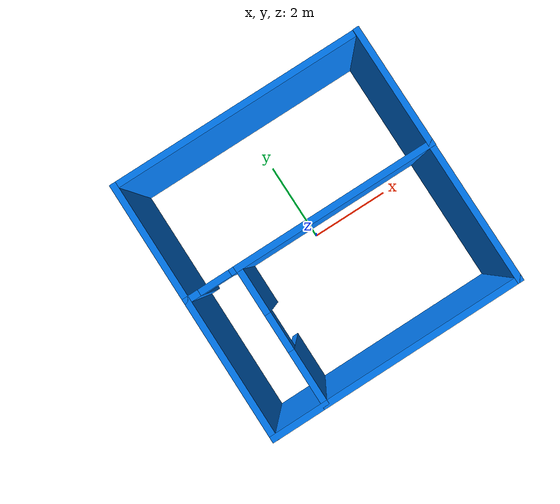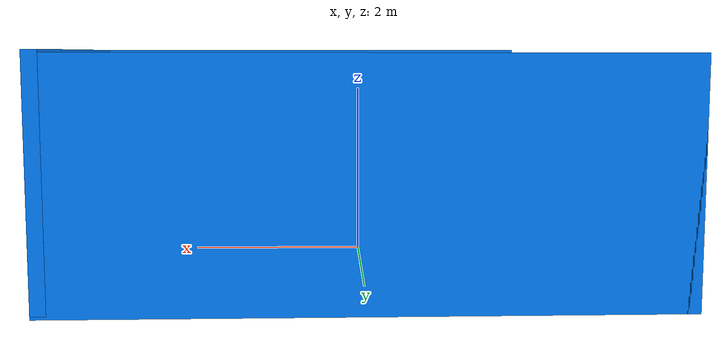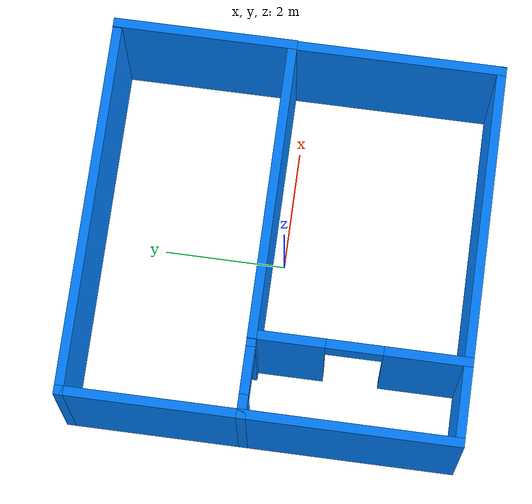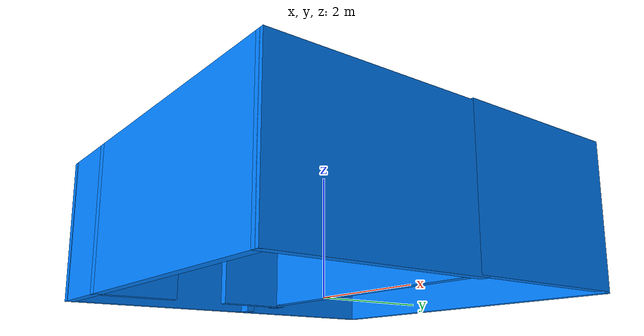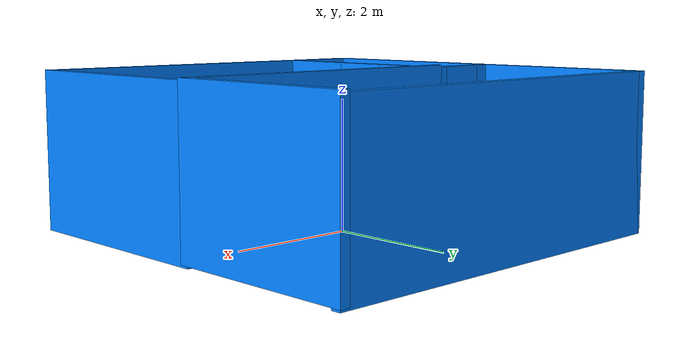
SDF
<?xml version='1.0'?>
<sdf version='1.6'>
  <model name='BuildingFloorPlan'>
    <link name='Wall_1'>
      <pose frame=''>0 3.10989 0 0 -0 0</pose>
      <self_collide>0</self_collide>
      <kinematic>0</kinematic>
      <gravity>1</gravity>
      <inertial>
        <mass>1</mass>
        <pose frame=''>0 0 0 0 -0 0</pose>
        <inertia>
          <ixx>1</ixx>
          <ixy>0</ixy>
          <ixz>0</ixz>
          <iyy>1</iyy>
          <iyz>0</iyz>
          <izz>1</izz>
        </inertia>
      </inertial>
      <visual name='Wall_1_Visual'>
        <pose frame=''>0 0 1.22 0 -0 0</pose>
        <geometry>
          <box>
            <size>6.23 0.15 2.44</size>
          </box>
        </geometry>
        <material>
          <script>
            <uri>file://media/materials/scripts/gazebo.material</uri>
            <name>Gazebo/Grey</name>
          </script>
          <ambient>0 0.5 1 1</ambient>
          <diffuse>0.7 0.7 0.7 1</diffuse>
          <specular>0.01 0.01 0.01 1</specular>
          <emissive>0 0 0 1</emissive>
          <shader type='vertex'>
            <normal_map>__default__</normal_map>
          </shader>
        </material>
        <meta>
          <layer>0</layer>
        </meta>
        <transparency>0</transparency>
        <cast_shadows>1</cast_shadows>
      </visual>
      <collision name='Wall_1_Collision'>
        <laser_retro>0</laser_retro>
        <max_contacts>10</max_contacts>
        <pose frame=''>0 0 1.22 0 -0 0</pose>
        <geometry>
          <box>
            <size>6.23 0.15 2.44</size>
          </box>
        </geometry>
        <surface>
          <friction>
            <ode>
              <mu>1</mu>
              <mu2>1</mu2>
              <fdir1>0 0 0</fdir1>
              <slip1>0</slip1>
              <slip2>0</slip2>
            </ode>
            <torsional>
              <coefficient>1</coefficient>
              <patch_radius>0</patch_radius>
              <surface_radius>0</surface_radius>
              <use_patch_radius>1</use_patch_radius>
              <ode>
                <slip>0</slip>
              </ode>
            </torsional>
          </friction>
          <bounce>
            <restitution_coefficient>0</restitution_coefficient>
            <threshold>1e+06</threshold>
          </bounce>
          <contact>
            <collide_without_contact>0</collide_without_contact>
            <collide_without_contact_bitmask>1</collide_without_contact_bitmask>
            <collide_bitmask>1</collide_bitmask>
            <ode>
              <soft_cfm>0</soft_cfm>
              <soft_erp>0.2</soft_erp>
              <kp>1e+13</kp>
              <kd>1</kd>
              <max_vel>0.01</max_vel>
              <min_depth>0</min_depth>
            </ode>
            <bullet>
              <split_impulse>1</split_impulse>
              <split_impulse_penetration_threshold>-0.01</split_impulse_penetration_threshold>
              <soft_cfm>0</soft_cfm>
              <soft_erp>0.2</soft_erp>
              <kp>1e+13</kp>
              <kd>1</kd>
            </bullet>
          </contact>
        </surface>
      </collision>
    </link>
    <link name='Wall_10'>
      <pose frame=''>0.635 -3.11011 0 0 -0 0</pose>
      <self_collide>0</self_collide>
      <kinematic>0</kinematic>
      <gravity>1</gravity>
      <inertial>
        <mass>1</mass>
        <pose frame=''>0 0 0 0 -0 0</pose>
        <inertia>
          <ixx>1</ixx>
          <ixy>0</ixy>
          <ixz>0</ixz>
          <iyy>1</iyy>
          <iyz>0</iyz>
          <izz>1</izz>
        </inertia>
      </inertial>
      <visual name='Wall_10_Visual'>
        <pose frame=''>0 0 1.22 0 -0 0</pose>
        <geometry>
          <box>
            <size>4.95989 0.15 2.44</size>
          </box>
        </geometry>
        <material>
          <script>
            <uri>file://media/materials/scripts/gazebo.material</uri>
            <name>Gazebo/Grey</name>
          </script>
          <ambient>0 0.5 1 1</ambient>
          <diffuse>0.7 0.7 0.7 1</diffuse>
          <specular>0.01 0.01 0.01 1</specular>
          <emissive>0 0 0 1</emissive>
          <shader type='vertex'>
            <normal_map>__default__</normal_map>
          </shader>
        </material>
        <meta>
          <layer>0</layer>
        </meta>
        <transparency>0</transparency>
        <cast_shadows>1</cast_shadows>
      </visual>
      <collision name='Wall_10_Collision'>
        <laser_retro>0</laser_retro>
        <max_contacts>10</max_contacts>
        <pose frame=''>0 0 1.22 0 -0 0</pose>
        <geometry>
          <box>
            <size>4.95989 0.15 2.44</size>
          </box>
        </geometry>
        <surface>
          <friction>
            <ode>
              <mu>1</mu>
              <mu2>1</mu2>
              <fdir1>0 0 0</fdir1>
              <slip1>0</slip1>
              <slip2>0</slip2>
            </ode>
            <torsional>
              <coefficient>1</coefficient>
              <patch_radius>0</patch_radius>
              <surface_radius>0</surface_radius>
              <use_patch_radius>1</use_patch_radius>
              <ode>
                <slip>0</slip>
              </ode>
            </torsional>
          </friction>
          <bounce>
            <restitution_coefficient>0</restitution_coefficient>
            <threshold>1e+06</threshold>
          </bounce>
          <contact>
            <collide_without_contact>0</collide_without_contact>
            <collide_without_contact_bitmask>1</collide_without_contact_bitmask>
            <collide_bitmask>1</collide_bitmask>
            <ode>
              <soft_cfm>0</soft_cfm>
              <soft_erp>0.2</soft_erp>
              <kp>1e+13</kp>
              <kd>1</kd>
              <max_vel>0.01</max_vel>
              <min_depth>0</min_depth>
            </ode>
            <bullet>
              <split_impulse>1</split_impulse>
              <split_impulse_penetration_threshold>-0.01</split_impulse_penetration_threshold>
              <soft_cfm>0</soft_cfm>
              <soft_erp>0.2</soft_erp>
              <kp>1e+13</kp>
              <kd>1</kd>
            </bullet>
          </contact>
        </surface>
      </collision>
    </link>
    <link name='Wall_12'>
      <pose frame=''>3.04 -1.42011 0 0 -0 1.5708</pose>
      <self_collide>0</self_collide>
      <kinematic>0</kinematic>
      <gravity>1</gravity>
      <inertial>
        <mass>1</mass>
        <pose frame=''>0 0 0 0 -0 0</pose>
        <inertia>
          <ixx>1</ixx>
          <ixy>0</ixy>
          <ixz>0</ixz>
          <iyy>1</iyy>
          <iyz>0</iyz>
          <izz>1</izz>
        </inertia>
      </inertial>
      <visual name='Wall_12_Visual'>
        <pose frame=''>0 0 1.22 0 -0 0</pose>
        <geometry>
          <box>
            <size>3.53 0.15 2.44</size>
          </box>
        </geometry>
        <material>
          <script>
            <uri>file://media/materials/scripts/gazebo.material</uri>
            <name>Gazebo/Grey</name>
          </script>
          <ambient>0 0.5 1 1</ambient>
          <diffuse>0.7 0.7 0.7 1</diffuse>
          <specular>0.01 0.01 0.01 1</specular>
          <emissive>0 0 0 1</emissive>
          <shader type='vertex'>
            <normal_map>__default__</normal_map>
          </shader>
        </material>
        <meta>
          <layer>0</layer>
        </meta>
        <transparency>0</transparency>
        <cast_shadows>1</cast_shadows>
      </visual>
      <collision name='Wall_12_Collision'>
        <laser_retro>0</laser_retro>
        <max_contacts>10</max_contacts>
        <pose frame=''>0 0 1.22 0 -0 0</pose>
        <geometry>
          <box>
            <size>3.53 0.15 2.44</size>
          </box>
        </geometry>
        <surface>
          <friction>
            <ode>
              <mu>1</mu>
              <mu2>1</mu2>
              <fdir1>0 0 0</fdir1>
              <slip1>0</slip1>
              <slip2>0</slip2>
            </ode>
            <torsional>
              <coefficient>1</coefficient>
              <patch_radius>0</patch_radius>
              <surface_radius>0</surface_radius>
              <use_patch_radius>1</use_patch_radius>
              <ode>
                <slip>0</slip>
              </ode>
            </torsional>
          </friction>
          <bounce>
            <restitution_coefficient>0</restitution_coefficient>
            <threshold>1e+06</threshold>
          </bounce>
          <contact>
            <collide_without_contact>0</collide_without_contact>
            <collide_without_contact_bitmask>1</collide_without_contact_bitmask>
            <collide_bitmask>1</collide_bitmask>
            <ode>
              <soft_cfm>0</soft_cfm>
              <soft_erp>0.2</soft_erp>
              <kp>1e+13</kp>
              <kd>1</kd>
              <max_vel>0.01</max_vel>
              <min_depth>0</min_depth>
            </ode>
            <bullet>
              <split_impulse>1</split_impulse>
              <split_impulse_penetration_threshold>-0.01</split_impulse_penetration_threshold>
              <soft_cfm>0</soft_cfm>
              <soft_erp>0.2</soft_erp>
              <kp>1e+13</kp>
              <kd>1</kd>
            </bullet>
          </contact>
        </surface>
      </collision>
    </link>
    <link name='Wall_14'>
      <pose frame=''>0.635 0.26989 0 0 -0 0</pose>
      <inertial>
        <mass>1</mass>
        <pose frame=''>0 0 0 0 -0 0</pose>
        <inertia>
          <ixx>1</ixx>
          <ixy>0</ixy>
          <ixz>0</ixz>
          <iyy>1</iyy>
          <iyz>0</iyz>
          <izz>1</izz>
        </inertia>
      </inertial>
      <self_collide>0</self_collide>
      <kinematic>0</kinematic>
      <gravity>1</gravity>
      <visual name='Wall_14_Visual'>
        <pose frame=''>0 0 1.25 0 -0 0</pose>
        <geometry>
          <box>
            <size>4.95989 0.15 2.44</size>
          </box>
        </geometry>
        <material>
          <script>
            <uri>file://media/materials/scripts/gazebo.material</uri>
            <name>Gazebo/Grey</name>
          </script>
          <ambient>0 0.5 1 1</ambient>
          <diffuse>0.7 0.7 0.7 1</diffuse>
          <specular>0.01 0.01 0.01 1</specular>
          <emissive>0 0 0 1</emissive>
          <shader type='vertex'>
            <normal_map>__default__</normal_map>
          </shader>
        </material>
        <meta>
          <layer>0</layer>
        </meta>
        <transparency>0</transparency>
        <cast_shadows>1</cast_shadows>
      </visual>
      <collision name='Wall_14_Collision'>
        <laser_retro>0</laser_retro>
        <max_contacts>10</max_contacts>
        <pose frame=''>0 0 1.25 0 -0 0</pose>
        <geometry>
          <box>
            <size>4.95989 0.15 2.5</size>
          </box>
        </geometry>
        <surface>
          <friction>
            <ode>
              <mu>1</mu>
              <mu2>1</mu2>
              <fdir1>0 0 0</fdir1>
              <slip1>0</slip1>
              <slip2>0</slip2>
            </ode>
            <torsional>
              <coefficient>1</coefficient>
              <patch_radius>0</patch_radius>
              <surface_radius>0</surface_radius>
              <use_patch_radius>1</use_patch_radius>
              <ode>
                <slip>0</slip>
              </ode>
            </torsional>
          </friction>
          <bounce>
            <restitution_coefficient>0</restitution_coefficient>
            <threshold>1e+06</threshold>
          </bounce>
          <contact>
            <collide_without_contact>0</collide_without_contact>
            <collide_without_contact_bitmask>1</collide_without_contact_bitmask>
            <collide_bitmask>1</collide_bitmask>
            <ode>
              <soft_cfm>0</soft_cfm>
              <soft_erp>0.2</soft_erp>
              <kp>1e+13</kp>
              <kd>1</kd>
              <max_vel>0.01</max_vel>
              <min_depth>0</min_depth>
            </ode>
            <bullet>
              <split_impulse>1</split_impulse>
              <split_impulse_penetration_threshold>-0.01</split_impulse_penetration_threshold>
              <soft_cfm>0</soft_cfm>
              <soft_erp>0.2</soft_erp>
              <kp>1e+13</kp>
              <kd>1</kd>
            </bullet>
          </contact>
        </surface>
      </collision>
    </link>
    <link name='Wall_16'>
      <pose frame=''>-2.405 0.26989 0 0 -0 3.14159</pose>
      <self_collide>0</self_collide>
      <kinematic>0</kinematic>
      <gravity>1</gravity>
      <inertial>
        <mass>1</mass>
        <pose frame=''>0 0 0 0 -0 0</pose>
        <inertia>
          <ixx>1</ixx>
          <ixy>0</ixy>
          <ixz>0</ixz>
          <iyy>1</iyy>
          <iyz>0</iyz>
          <izz>1</izz>
        </inertia>
      </inertial>
      <visual name='Wall_16_Visual_0'>
        <pose frame=''>-0.572286 0 1.22 0 -0 0</pose>
        <geometry>
          <box>
            <size>0.275427 0.15 2.44</size>
          </box>
        </geometry>
        <material>
          <script>
            <uri>file://media/materials/scripts/gazebo.material</uri>
            <name>Gazebo/Grey</name>
          </script>
          <ambient>0 0.5 1 1</ambient>
          <diffuse>0.7 0.7 0.7 1</diffuse>
          <specular>0.01 0.01 0.01 1</specular>
          <emissive>0 0 0 1</emissive>
          <shader type='vertex'>
            <normal_map>__default__</normal_map>
          </shader>
        </material>
        <meta>
          <layer>0</layer>
        </meta>
        <transparency>0</transparency>
        <cast_shadows>1</cast_shadows>
      </visual>
      <visual name='Wall_16_Visual_2'>
        <pose frame=''>-0.054573 0 2.22 0 -0 0</pose>
        <geometry>
          <box>
            <size>0.76 0.15 0.44</size>
          </box>
        </geometry>
        <material>
          <script>
            <uri>file://media/materials/scripts/gazebo.material</uri>
            <name>Gazebo/Grey</name>
          </script>
          <ambient>0 0.5 1 1</ambient>
          <diffuse>0.7 0.7 0.7 1</diffuse>
          <specular>0.01 0.01 0.01 1</specular>
          <emissive>0 0 0 1</emissive>
          <shader type='vertex'>
            <normal_map>__default__</normal_map>
          </shader>
        </material>
        <meta>
          <layer>0</layer>
        </meta>
        <transparency>0</transparency>
        <cast_shadows>1</cast_shadows>
      </visual>
      <visual name='Wall_16_Visual_1'>
        <pose frame=''>0.517714 0 1.22 0 -0 0</pose>
        <geometry>
          <box>
            <size>0.384573 0.15 2.44</size>
          </box>
        </geometry>
        <material>
          <script>
            <uri>file://media/materials/scripts/gazebo.material</uri>
            <name>Gazebo/Grey</name>
          </script>
          <ambient>0 0.5 1 1</ambient>
          <diffuse>0.7 0.7 0.7 1</diffuse>
          <specular>0.01 0.01 0.01 1</specular>
          <emissive>0 0 0 1</emissive>
          <shader type='vertex'>
            <normal_map>__default__</normal_map>
          </shader>
        </material>
        <meta>
          <layer>0</layer>
        </meta>
        <transparency>0</transparency>
        <cast_shadows>1</cast_shadows>
      </visual>
      <collision name='Wall_16_Collision_2'>
        <laser_retro>0</laser_retro>
        <max_contacts>10</max_contacts>
        <pose frame=''>-0.054573 0 2.22 0 -0 0</pose>
        <geometry>
          <box>
            <size>0.76 0.15 0.44</size>
          </box>
        </geometry>
        <surface>
          <friction>
            <ode>
              <mu>1</mu>
              <mu2>1</mu2>
              <fdir1>0 0 0</fdir1>
              <slip1>0</slip1>
              <slip2>0</slip2>
            </ode>
            <torsional>
              <coefficient>1</coefficient>
              <patch_radius>0</patch_radius>
              <surface_radius>0</surface_radius>
              <use_patch_radius>1</use_patch_radius>
              <ode>
                <slip>0</slip>
              </ode>
            </torsional>
          </friction>
          <bounce>
            <restitution_coefficient>0</restitution_coefficient>
            <threshold>1e+06</threshold>
          </bounce>
          <contact>
            <collide_without_contact>0</collide_without_contact>
            <collide_without_contact_bitmask>1</collide_without_contact_bitmask>
            <collide_bitmask>1</collide_bitmask>
            <ode>
              <soft_cfm>0</soft_cfm>
              <soft_erp>0.2</soft_erp>
              <kp>1e+13</kp>
              <kd>1</kd>
              <max_vel>0.01</max_vel>
              <min_depth>0</min_depth>
            </ode>
            <bullet>
              <split_impulse>1</split_impulse>
              <split_impulse_penetration_threshold>-0.01</split_impulse_penetration_threshold>
              <soft_cfm>0</soft_cfm>
              <soft_erp>0.2</soft_erp>
              <kp>1e+13</kp>
              <kd>1</kd>
            </bullet>
          </contact>
        </surface>
      </collision>
      <collision name='Wall_16_Collision_1'>
        <laser_retro>0</laser_retro>
        <max_contacts>10</max_contacts>
        <pose frame=''>0.517714 0 1.22 0 -0 0</pose>
        <geometry>
          <box>
            <size>0.384573 0.15 2.44</size>
          </box>
        </geometry>
        <surface>
          <friction>
            <ode>
              <mu>1</mu>
              <mu2>1</mu2>
              <fdir1>0 0 0</fdir1>
              <slip1>0</slip1>
              <slip2>0</slip2>
            </ode>
            <torsional>
              <coefficient>1</coefficient>
              <patch_radius>0</patch_radius>
              <surface_radius>0</surface_radius>
              <use_patch_radius>1</use_patch_radius>
              <ode>
                <slip>0</slip>
              </ode>
            </torsional>
          </friction>
          <bounce>
            <restitution_coefficient>0</restitution_coefficient>
            <threshold>1e+06</threshold>
          </bounce>
          <contact>
            <collide_without_contact>0</collide_without_contact>
            <collide_without_contact_bitmask>1</collide_without_contact_bitmask>
            <collide_bitmask>1</collide_bitmask>
            <ode>
              <soft_cfm>0</soft_cfm>
              <soft_erp>0.2</soft_erp>
              <kp>1e+13</kp>
              <kd>1</kd>
              <max_vel>0.01</max_vel>
              <min_depth>0</min_depth>
            </ode>
            <bullet>
              <split_impulse>1</split_impulse>
              <split_impulse_penetration_threshold>-0.01</split_impulse_penetration_threshold>
              <soft_cfm>0</soft_cfm>
              <soft_erp>0.2</soft_erp>
              <kp>1e+13</kp>
              <kd>1</kd>
            </bullet>
          </contact>
        </surface>
      </collision>
      <collision name='Wall_16_Collision_0'>
        <laser_retro>0</laser_retro>
        <max_contacts>10</max_contacts>
        <pose frame=''>-0.572286 0 1.22 0 -0 0</pose>
        <geometry>
          <box>
            <size>0.275427 0.15 2.44</size>
          </box>
        </geometry>
        <surface>
          <friction>
            <ode>
              <mu>1</mu>
              <mu2>1</mu2>
              <fdir1>0 0 0</fdir1>
              <slip1>0</slip1>
              <slip2>0</slip2>
            </ode>
            <torsional>
              <coefficient>1</coefficient>
              <patch_radius>0</patch_radius>
              <surface_radius>0</surface_radius>
              <use_patch_radius>1</use_patch_radius>
              <ode>
                <slip>0</slip>
              </ode>
            </torsional>
          </friction>
          <bounce>
            <restitution_coefficient>0</restitution_coefficient>
            <threshold>1e+06</threshold>
          </bounce>
          <contact>
            <collide_without_contact>0</collide_without_contact>
            <collide_without_contact_bitmask>1</collide_without_contact_bitmask>
            <collide_bitmask>1</collide_bitmask>
            <ode>
              <soft_cfm>0</soft_cfm>
              <soft_erp>0.2</soft_erp>
              <kp>1e+13</kp>
              <kd>1</kd>
              <max_vel>0.01</max_vel>
              <min_depth>0</min_depth>
            </ode>
            <bullet>
              <split_impulse>1</split_impulse>
              <split_impulse_penetration_threshold>-0.01</split_impulse_penetration_threshold>
              <soft_cfm>0</soft_cfm>
              <soft_erp>0.2</soft_erp>
              <kp>1e+13</kp>
              <kd>1</kd>
            </bullet>
          </contact>
        </surface>
      </collision>
    </link>
    <link name='Wall_18'>
      <pose frame=''>3.04 1.68989 0 0 0 -1.5708</pose>
      <inertial>
        <mass>1</mass>
        <pose frame=''>0 0 0 0 -0 0</pose>
        <inertia>
          <ixx>1</ixx>
          <ixy>0</ixy>
          <ixz>0</ixz>
          <iyy>1</iyy>
          <iyz>0</iyz>
          <izz>1</izz>
        </inertia>
      </inertial>
      <self_collide>0</self_collide>
      <kinematic>0</kinematic>
      <gravity>1</gravity>
      <visual name='Wall_18_Visual'>
        <pose frame=''>0 0 1.25 0 -0 0</pose>
        <geometry>
          <box>
            <size>2.99044 0.15 2.44</size>
          </box>
        </geometry>
        <material>
          <script>
            <uri>file://media/materials/scripts/gazebo.material</uri>
            <name>Gazebo/Grey</name>
          </script>
          <ambient>0 0.5 1 1</ambient>
          <diffuse>0.7 0.7 0.7 1</diffuse>
          <specular>0.01 0.01 0.01 1</specular>
          <emissive>0 0 0 1</emissive>
          <shader type='vertex'>
            <normal_map>__default__</normal_map>
          </shader>
        </material>
        <meta>
          <layer>0</layer>
        </meta>
        <transparency>0</transparency>
        <cast_shadows>1</cast_shadows>
      </visual>
      <collision name='Wall_18_Collision'>
        <laser_retro>0</laser_retro>
        <max_contacts>10</max_contacts>
        <pose frame=''>0 0 1.25 0 -0 0</pose>
        <geometry>
          <box>
            <size>2.99044 0.15 2.5</size>
          </box>
        </geometry>
        <surface>
          <friction>
            <ode>
              <mu>1</mu>
              <mu2>1</mu2>
              <fdir1>0 0 0</fdir1>
              <slip1>0</slip1>
              <slip2>0</slip2>
            </ode>
            <torsional>
              <coefficient>1</coefficient>
              <patch_radius>0</patch_radius>
              <surface_radius>0</surface_radius>
              <use_patch_radius>1</use_patch_radius>
              <ode>
                <slip>0</slip>
              </ode>
            </torsional>
          </friction>
          <bounce>
            <restitution_coefficient>0</restitution_coefficient>
            <threshold>1e+06</threshold>
          </bounce>
          <contact>
            <collide_without_contact>0</collide_without_contact>
            <collide_without_contact_bitmask>1</collide_without_contact_bitmask>
            <collide_bitmask>1</collide_bitmask>
            <ode>
              <soft_cfm>0</soft_cfm>
              <soft_erp>0.2</soft_erp>
              <kp>1e+13</kp>
              <kd>1</kd>
              <max_vel>0.01</max_vel>
              <min_depth>0</min_depth>
            </ode>
            <bullet>
              <split_impulse>1</split_impulse>
              <split_impulse_penetration_threshold>-0.01</split_impulse_penetration_threshold>
              <soft_cfm>0</soft_cfm>
              <soft_erp>0.2</soft_erp>
              <kp>1e+13</kp>
              <kd>1</kd>
            </bullet>
          </contact>
        </surface>
      </collision>
    </link>
    <link name='Wall_3'>
      <pose frame=''>-3.04 -0.00011 0 0 0 -1.5708</pose>
      <inertial>
        <mass>1</mass>
        <pose frame=''>0 0 0 0 -0 0</pose>
        <inertia>
          <ixx>1</ixx>
          <ixy>0</ixy>
          <ixz>0</ixz>
          <iyy>1</iyy>
          <iyz>0</iyz>
          <izz>1</izz>
        </inertia>
      </inertial>
      <self_collide>0</self_collide>
      <kinematic>0</kinematic>
      <gravity>1</gravity>
      <visual name='Wall_3_Visual'>
        <pose frame=''>0 0 1.22 0 -0 0</pose>
        <geometry>
          <box>
            <size>6.37 0.15 2.44</size>
          </box>
        </geometry>
        <material>
          <script>
            <uri>file://media/materials/scripts/gazebo.material</uri>
            <name>Gazebo/Grey</name>
          </script>
          <ambient>0 0.5 1 1</ambient>
          <diffuse>0.7 0.7 0.7 1</diffuse>
          <specular>0.01 0.01 0.01 1</specular>
          <emissive>0 0 0 1</emissive>
          <shader type='vertex'>
            <normal_map>__default__</normal_map>
          </shader>
        </material>
        <meta>
          <layer>0</layer>
        </meta>
        <transparency>0</transparency>
        <cast_shadows>1</cast_shadows>
      </visual>
      <collision name='Wall_3_Collision'>
        <laser_retro>0</laser_retro>
        <max_contacts>10</max_contacts>
        <pose frame=''>0 0 1.22 0 -0 0</pose>
        <geometry>
          <box>
            <size>6.37 0.15 2.44</size>
          </box>
        </geometry>
        <surface>
          <friction>
            <ode>
              <mu>1</mu>
              <mu2>1</mu2>
              <fdir1>0 0 0</fdir1>
              <slip1>0</slip1>
              <slip2>0</slip2>
            </ode>
            <torsional>
              <coefficient>1</coefficient>
              <patch_radius>0</patch_radius>
              <surface_radius>0</surface_radius>
              <use_patch_radius>1</use_patch_radius>
              <ode>
                <slip>0</slip>
              </ode>
            </torsional>
          </friction>
          <bounce>
            <restitution_coefficient>0</restitution_coefficient>
            <threshold>1e+06</threshold>
          </bounce>
          <contact>
            <collide_without_contact>0</collide_without_contact>
            <collide_without_contact_bitmask>1</collide_without_contact_bitmask>
            <collide_bitmask>1</collide_bitmask>
            <ode>
              <soft_cfm>0</soft_cfm>
              <soft_erp>0.2</soft_erp>
              <kp>1e+13</kp>
              <kd>1</kd>
              <max_vel>0.01</max_vel>
              <min_depth>0</min_depth>
            </ode>
            <bullet>
              <split_impulse>1</split_impulse>
              <split_impulse_penetration_threshold>-0.01</split_impulse_penetration_threshold>
              <soft_cfm>0</soft_cfm>
              <soft_erp>0.2</soft_erp>
              <kp>1e+13</kp>
              <kd>1</kd>
            </bullet>
          </contact>
        </surface>
      </collision>
    </link>
    <link name='Wall_6'>
      <pose frame=''>-2.405 -3.11011 0 0 -0 0</pose>
      <self_collide>0</self_collide>
      <kinematic>0</kinematic>
      <gravity>1</gravity>
      <inertial>
        <mass>1</mass>
        <pose frame=''>0 0 0 0 -0 0</pose>
        <inertia>
          <ixx>1</ixx>
          <ixy>0</ixy>
          <ixz>0</ixz>
          <iyy>1</iyy>
          <iyz>0</iyz>
          <izz>1</izz>
        </inertia>
      </inertial>
      <visual name='Wall_6_Visual'>
        <pose frame=''>0 0 1.22 0 -0 0</pose>
        <geometry>
          <box>
            <size>1.42 0.15 2.44</size>
          </box>
        </geometry>
        <material>
          <script>
            <uri>file://media/materials/scripts/gazebo.material</uri>
            <name>Gazebo/Grey</name>
          </script>
          <ambient>0 0.5 1 1</ambient>
          <diffuse>0.7 0.7 0.7 1</diffuse>
          <specular>0.01 0.01 0.01 1</specular>
          <emissive>0 0 0 1</emissive>
          <shader type='vertex'>
            <normal_map>__default__</normal_map>
          </shader>
        </material>
        <meta>
          <layer>0</layer>
        </meta>
        <transparency>0</transparency>
        <cast_shadows>1</cast_shadows>
      </visual>
      <collision name='Wall_6_Collision'>
        <laser_retro>0</laser_retro>
        <max_contacts>10</max_contacts>
        <pose frame=''>0 0 1.22 0 -0 0</pose>
        <geometry>
          <box>
            <size>1.42 0.15 2.44</size>
          </box>
        </geometry>
        <surface>
          <friction>
            <ode>
              <mu>1</mu>
              <mu2>1</mu2>
              <fdir1>0 0 0</fdir1>
              <slip1>0</slip1>
              <slip2>0</slip2>
            </ode>
            <torsional>
              <coefficient>1</coefficient>
              <patch_radius>0</patch_radius>
              <surface_radius>0</surface_radius>
              <use_patch_radius>1</use_patch_radius>
              <ode>
                <slip>0</slip>
              </ode>
            </torsional>
          </friction>
          <bounce>
            <restitution_coefficient>0</restitution_coefficient>
            <threshold>1e+06</threshold>
          </bounce>
          <contact>
            <collide_without_contact>0</collide_without_contact>
            <collide_without_contact_bitmask>1</collide_without_contact_bitmask>
            <collide_bitmask>1</collide_bitmask>
            <ode>
              <soft_cfm>0</soft_cfm>
              <soft_erp>0.2</soft_erp>
              <kp>1e+13</kp>
              <kd>1</kd>
              <max_vel>0.01</max_vel>
              <min_depth>0</min_depth>
            </ode>
            <bullet>
              <split_impulse>1</split_impulse>
              <split_impulse_penetration_threshold>-0.01</split_impulse_penetration_threshold>
              <soft_cfm>0</soft_cfm>
              <soft_erp>0.2</soft_erp>
              <kp>1e+13</kp>
              <kd>1</kd>
            </bullet>
          </contact>
        </surface>
      </collision>
    </link>
    <link name='Wall_8'>
      <pose frame=''>-1.77 -1.42011 0 0 -0 1.5708</pose>
      <self_collide>0</self_collide>
      <kinematic>0</kinematic>
      <gravity>1</gravity>
      <inertial>
        <mass>1</mass>
        <pose frame=''>0 0 0 0 -0 0</pose>
        <inertia>
          <ixx>1</ixx>
          <ixy>0</ixy>
          <ixz>0</ixz>
          <iyy>1</iyy>
          <iyz>0</iyz>
          <izz>1</izz>
        </inertia>
      </inertial>
      <visual name='Wall_8_Visual_0'>
        <pose frame=''>-1.06528 0 1.22 0 -0 0</pose>
        <geometry>
          <box>
            <size>1.39945 0.15 2.44</size>
          </box>
        </geometry>
        <material>
          <script>
            <uri>file://media/materials/scripts/gazebo.material</uri>
            <name>Gazebo/Grey</name>
          </script>
          <ambient>0 0.5 1 1</ambient>
          <diffuse>0.7 0.7 0.7 1</diffuse>
          <specular>0.01 0.01 0.01 1</specular>
          <emissive>0 0 0 1</emissive>
          <shader type='vertex'>
            <normal_map>__default__</normal_map>
          </shader>
        </material>
        <meta>
          <layer>0</layer>
        </meta>
        <transparency>0</transparency>
        <cast_shadows>1</cast_shadows>
      </visual>
      <visual name='Wall_8_Visual_1'>
        <pose frame=''>1.15472 0 1.22 0 -0 0</pose>
        <geometry>
          <box>
            <size>1.22055 0.15 2.44</size>
          </box>
        </geometry>
        <material>
          <script>
            <uri>file://media/materials/scripts/gazebo.material</uri>
            <name>Gazebo/Grey</name>
          </script>
          <ambient>0 0.5 1 1</ambient>
          <diffuse>0.7 0.7 0.7 1</diffuse>
          <specular>0.01 0.01 0.01 1</specular>
          <emissive>0 0 0 1</emissive>
          <shader type='vertex'>
            <normal_map>__default__</normal_map>
          </shader>
        </material>
        <meta>
          <layer>0</layer>
        </meta>
        <transparency>0</transparency>
        <cast_shadows>1</cast_shadows>
      </visual>
      <visual name='Wall_8_Visual_2'>
        <pose frame=''>0.089446 0 2.22 0 -0 0</pose>
        <geometry>
          <box>
            <size>0.91 0.15 0.44</size>
          </box>
        </geometry>
        <material>
          <script>
            <uri>file://media/materials/scripts/gazebo.material</uri>
            <name>Gazebo/Grey</name>
          </script>
          <ambient>0 0.5 1 1</ambient>
          <diffuse>0.7 0.7 0.7 1</diffuse>
          <specular>0.01 0.01 0.01 1</specular>
          <emissive>0 0 0 1</emissive>
          <shader type='vertex'>
            <normal_map>__default__</normal_map>
          </shader>
        </material>
        <meta>
          <layer>0</layer>
        </meta>
        <transparency>0</transparency>
        <cast_shadows>1</cast_shadows>
      </visual>
      <collision name='Wall_8_Collision_0'>
        <laser_retro>0</laser_retro>
        <max_contacts>10</max_contacts>
        <pose frame=''>-1.06528 0 1.22 0 -0 0</pose>
        <geometry>
          <box>
            <size>1.39945 0.15 2.44</size>
          </box>
        </geometry>
        <surface>
          <friction>
            <ode>
              <mu>1</mu>
              <mu2>1</mu2>
              <fdir1>0 0 0</fdir1>
              <slip1>0</slip1>
              <slip2>0</slip2>
            </ode>
            <torsional>
              <coefficient>1</coefficient>
              <patch_radius>0</patch_radius>
              <surface_radius>0</surface_radius>
              <use_patch_radius>1</use_patch_radius>
              <ode>
                <slip>0</slip>
              </ode>
            </torsional>
          </friction>
          <bounce>
            <restitution_coefficient>0</restitution_coefficient>
            <threshold>1e+06</threshold>
          </bounce>
          <contact>
            <collide_without_contact>0</collide_without_contact>
            <collide_without_contact_bitmask>1</collide_without_contact_bitmask>
            <collide_bitmask>1</collide_bitmask>
            <ode>
              <soft_cfm>0</soft_cfm>
              <soft_erp>0.2</soft_erp>
              <kp>1e+13</kp>
              <kd>1</kd>
              <max_vel>0.01</max_vel>
              <min_depth>0</min_depth>
            </ode>
            <bullet>
              <split_impulse>1</split_impulse>
              <split_impulse_penetration_threshold>-0.01</split_impulse_penetration_threshold>
              <soft_cfm>0</soft_cfm>
              <soft_erp>0.2</soft_erp>
              <kp>1e+13</kp>
              <kd>1</kd>
            </bullet>
          </contact>
        </surface>
      </collision>
      <collision name='Wall_8_Collision_1'>
        <laser_retro>0</laser_retro>
        <max_contacts>10</max_contacts>
        <pose frame=''>1.15472 0 1.22 0 -0 0</pose>
        <geometry>
          <box>
            <size>1.22055 0.15 2.44</size>
          </box>
        </geometry>
        <surface>
          <friction>
            <ode>
              <mu>1</mu>
              <mu2>1</mu2>
              <fdir1>0 0 0</fdir1>
              <slip1>0</slip1>
              <slip2>0</slip2>
            </ode>
            <torsional>
              <coefficient>1</coefficient>
              <patch_radius>0</patch_radius>
              <surface_radius>0</surface_radius>
              <use_patch_radius>1</use_patch_radius>
              <ode>
                <slip>0</slip>
              </ode>
            </torsional>
          </friction>
          <bounce>
            <restitution_coefficient>0</restitution_coefficient>
            <threshold>1e+06</threshold>
          </bounce>
          <contact>
            <collide_without_contact>0</collide_without_contact>
            <collide_without_contact_bitmask>1</collide_without_contact_bitmask>
            <collide_bitmask>1</collide_bitmask>
            <ode>
              <soft_cfm>0</soft_cfm>
              <soft_erp>0.2</soft_erp>
              <kp>1e+13</kp>
              <kd>1</kd>
              <max_vel>0.01</max_vel>
              <min_depth>0</min_depth>
            </ode>
            <bullet>
              <split_impulse>1</split_impulse>
              <split_impulse_penetration_threshold>-0.01</split_impulse_penetration_threshold>
              <soft_cfm>0</soft_cfm>
              <soft_erp>0.2</soft_erp>
              <kp>1e+13</kp>
              <kd>1</kd>
            </bullet>
          </contact>
        </surface>
      </collision>
      <collision name='Wall_8_Collision_2'>
        <laser_retro>0</laser_retro>
        <max_contacts>10</max_contacts>
        <pose frame=''>0.089446 0 2.22 0 -0 0</pose>
        <geometry>
          <box>
            <size>0.91 0.15 0.44</size>
          </box>
        </geometry>
        <surface>
          <friction>
            <ode>
              <mu>1</mu>
              <mu2>1</mu2>
              <fdir1>0 0 0</fdir1>
              <slip1>0</slip1>
              <slip2>0</slip2>
            </ode>
            <torsional>
              <coefficient>1</coefficient>
              <patch_radius>0</patch_radius>
              <surface_radius>0</surface_radius>
              <use_patch_radius>1</use_patch_radius>
              <ode>
                <slip>0</slip>
              </ode>
            </torsional>
          </friction>
          <bounce>
            <restitution_coefficient>0</restitution_coefficient>
            <threshold>1e+06</threshold>
          </bounce>
          <contact>
            <collide_without_contact>0</collide_without_contact>
            <collide_without_contact_bitmask>1</collide_without_contact_bitmask>
            <collide_bitmask>1</collide_bitmask>
            <ode>
              <soft_cfm>0</soft_cfm>
              <soft_erp>0.2</soft_erp>
              <kp>1e+13</kp>
              <kd>1</kd>
              <max_vel>0.01</max_vel>
              <min_depth>0</min_depth>
            </ode>
            <bullet>
              <split_impulse>1</split_impulse>
              <split_impulse_penetration_threshold>-0.01</split_impulse_penetration_threshold>
              <soft_cfm>0</soft_cfm>
              <soft_erp>0.2</soft_erp>
              <kp>1e+13</kp>
              <kd>1</kd>
            </bullet>
          </contact>
        </surface>
      </collision>
    </link>
    <static>1</static>
    <allow_auto_disable>1</allow_auto_disable>
  </model>
</sdf>
